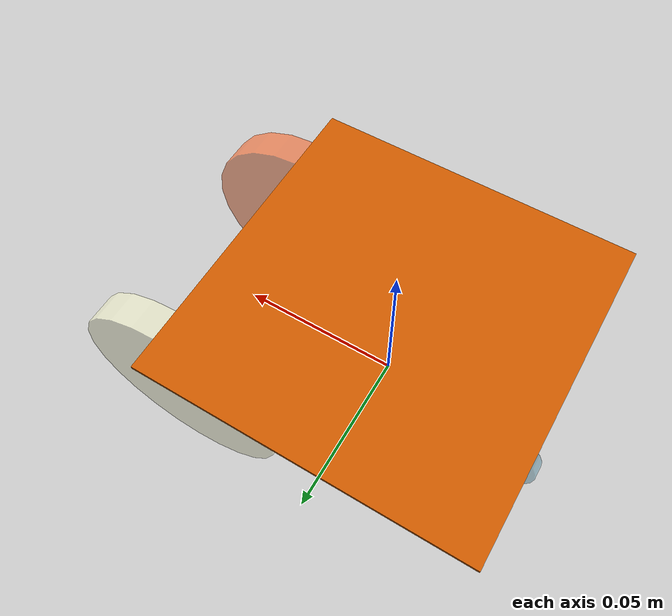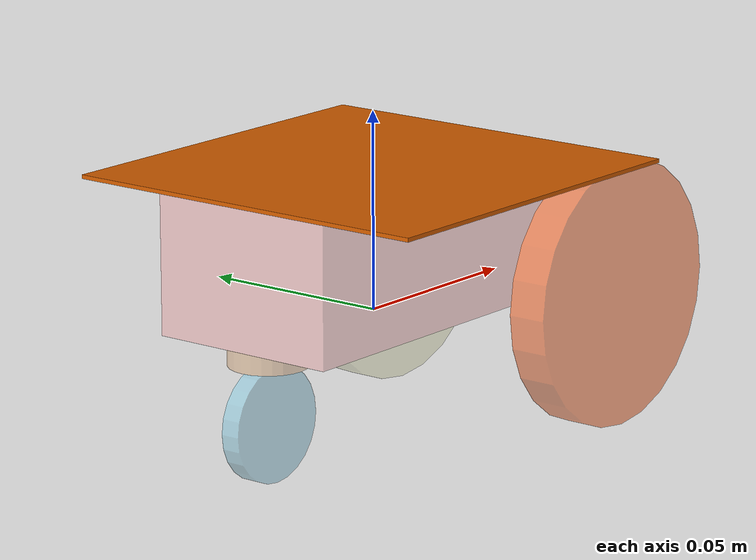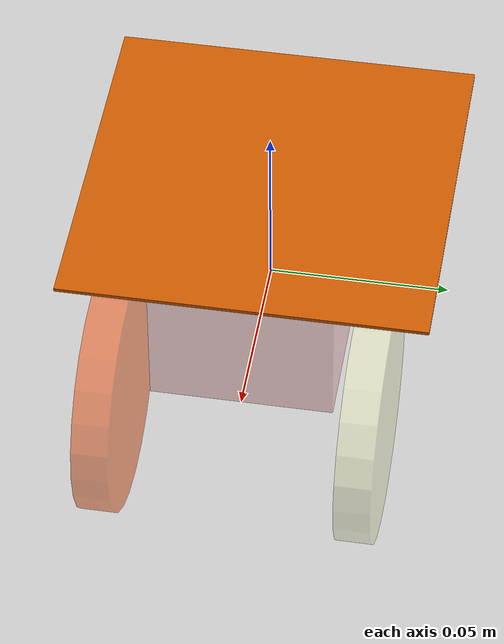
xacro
<?xml version="1.0"?>
<robot name="edumip" xmlns:xacro="http://ros.org/wiki/xacro">

<!-- Numerical Macros - units are meters and raidans -->
<xacro:property name="wheel_separation" value="0.070"/>
<xacro:property name="wheel_radius" value="0.034"/>
<xacro:property name="wheel_width" value="0.010"/>
<xacro:property name="body_height" value="0.1"/>
<xacro:property name="body_width" value="0.050"/>
<xacro:property name="body_length" value="0.035"/>
<xacro:property name="PI" value="3.1415926"/>
<xacro:property name="hokuyo_link" value="0.02"/>

<xacro:property name="front_base_height" value="0.005"/>
<xacro:property name="front_base_radius" value="0.01"/>

<material name="light_pink">
	<color rgba="1.0 0.7 0.7 0.5"/>
</material>

<material name="light_yellow">
	<color rgba="1.0 1.0 0.8 0.5"/>
</material>

<material name="orange">
	<color rgba="1.0 0.3 0.0 0.5"/>
</material>

<material name="burlywood">
	<color rgba="0.9 0.7 0.5 0.5"/>
</material>

<material name="skyblue">
    <color rgba="0.5 0.8 0.9 0.5"/>
</material>

<!-- edumip body -->
<link name="edumip_body">
	<collision>
		<origin xyz="0 0 ${0.5*body_length}" rpy="0 0 0"/>
		<geometry>
			<box size="${body_height} ${body_width} ${body_length}"/>
		</geometry>
	</collision>

	<visual>
		<origin xyz="0 0 ${0.5*body_length}" rpy="0 0 0"/>
		<geometry>
			<box size="${body_height} ${body_width} ${body_length}"/>
		</geometry>
		<material name="light_pink"/>
	</visual>

	<inertial>
		<origin xyz="0 0 ${0.5*body_length}" rpy="0 0 0"/>
		<mass value="0.180"/>
		<inertia ixx="6.0e-4" ixy="0" ixz="0" iyy="6.0e-4" iyz="0" izz="6.0e-4"/>
	</inertial>
</link>

<gazebo reference="edumip_body">
	<material>Gazebo/RedBright</material>
	<mu1>1.5</mu1>
	<mu2>1.5</mu2>
	<fdir1>1 0 0</fdir1>
	<kp>1000000.0</kp>
	<kd>100.0</kd>
	<maxVel>1.0</maxVel>
	<minDepth>0.01</minDepth>
</gazebo>

<!-- two wheels -->
<xacro:macro name="wheel" params="suffix reflect rviz_color gazebo_color">

	<link name="wheel${suffix}">
		<collision>
			<origin xyz="0 0 0" rpy="${PI/2} 0 0"/>
			<geometry>
				<cylinder radius="${wheel_radius}" length="${wheel_width}"/>
			</geometry>
		</collision>

		<visual>
			<origin xyz="0 0 0" rpy="${PI/2} 0 0"/>
			<geometry>
				<cylinder radius="${wheel_radius}" length="${wheel_width}"/>
			</geometry>
			<material name="${rviz_color}"/>
		</visual>

		<inertial>
			<origin xyz="0 0 0" rpy="0 0 0"/>
			<mass value="0.030"/>
			<inertia ixx="1.75e-5" ixy="0" ixz="0" iyy="1.75e-5" iyz="0" izz="1.75e-5"/>
		</inertial>
	</link>

	<joint name="joint${suffix}" type="continuous">
		<axis xyz="0 1 0" rpy="0 0 0"/>
		<parent link="edumip_body"/>
		<child link="wheel${suffix}"/>
		<origin xyz="${0.5*body_height} ${wheel_separation/2*reflect} 0" rpy="0 0 0"/>
	</joint>

	<gazebo reference="wheel${suffix}">
		<material>${gazebo_color}</material>
		<mu1>0.2</mu1>
		<mu2>0.2</mu2>
	</gazebo>

</xacro:macro>

<xacro:wheel suffix="L" reflect="1" rviz_color="light_yellow" gazebo_color="Gazebo/ZincYellow"/>
<xacro:wheel suffix="R" reflect="-1" rviz_color="orange" gazebo_color="Gazebo/Orange"/>

<!-- front wheel and its base to compose a ball joint -->
<!-- front wheel base -->

<link name="front_wheel_base">
    <collision>
        <origin xyz="0 0 0" rpy="0 0 0"/>
        <geometry>
            <cylinder radius="${front_base_radius}" length="${front_base_height}"/>
        </geometry>
    </collision>
    <visual>
        <origin xyz="0 0 0" rpy="0 0 0"/>
        <geometry>
            <cylinder radius="${front_base_radius}" length="${front_base_height}"/>
        </geometry>
        <material name="burlywood"/>
    </visual>
    <inertial>
        <origin xyz="0 0 0" rpy="0 0 0"/>
		<mass value="0.030"/>
        <inertia ixx="1.75e-5" ixy="0" ixz="0" iyy="1.75e-5" iyz="0" izz="1.75e-5"/>
    </inertial>
</link>

<joint name="front_wheel_base_joint" type="fixed">
    <axis xyz="0 0 1" rpy="0 0 0"/>
    <parent link="edumip_body"/>
    <child link="front_wheel_base"/>
    <origin xyz="-${0.5*body_height-0.01} 0 ${-front_base_height/2}" rpy="0 0 0"/>
	<limit lower="${-PI/3}" upper="${PI/3}" effort="1e2" velocity="1e0"/>
	<dynamcis damping="2e2" friction="1e2"/>
</joint>

<gazebo reference="front_wheel_base">
    <material>Gazebo/SkyBlue</material>
    <mu1>1.0</mu1>
    <mu2>1.0</mu2>
	<kp value="10000000.0" />
	<kd value="1.0" />
	<fdir1 value="1 0 0"/>
</gazebo>

<!-- front wheel -->
<link name="front_wheel">
    <collision>
        <origin xyz="0 0 0" rpy="${PI/2} 0 0"/>
        <geometry>
            <cylinder radius="${(wheel_radius-front_base_height)/2}" length="${wheel_width/2}"/>
        </geometry>
    </collision>
    <visual>
        <origin xyz="0 0 0" rpy="${PI/2} 0 0"/>
        <geometry>
            <cylinder radius="${(wheel_radius-front_base_height)/2}" length="${wheel_width/2}"/>
        </geometry>
        <material name="skyblue"/>
    </visual>
    <inertial>
        <origin xyz="0 0 0" rpy="0 0 0"/>
		<mass value="0.030"/>
        <inertia ixx="1.75e-5" ixy="0" ixz="0" iyy="1.75e-5" iyz="0" izz="1.75e-5"/>
    </inertial>
</link>

<joint name="front_wheel_joint" type="continuous">
    <axis xyz="0 1 0" rpy="0 0 0"/>
    <parent link="front_wheel_base"/>
    <child link="front_wheel"/>
    <origin xyz="0 0  ${-wheel_radius/2}" rpy="0 0 0"/>
</joint>

<gazebo reference="front_wheel">
    <material>Gazebo/Turquoise</material>
    <mu1>0.2</mu1>
    <mu2>0.2</mu2>
</gazebo>

<!-- edumip_balance plugin -->
<gazebo>
	<plugin name="edumip_horizontal_ros_gazebo_plugin" filename="libedumip_balance_ros_gazebo_plugin.so">
		<rosDebugLevel>3</rosDebugLevel>
		<updateRate>100</updateRate>
		<robotBaseFrame>edumip_body</robotBaseFrame>
		<frontBase>front_wheel_base_joint</frontBase>
		<frontJoint>front_wheel_joint</frontJoint>
		<leftJoint>jointL</leftJoint>
		<rightJoint>jointR</rightJoint>
		<wheelSeparation>${wheel_separation}</wheelSeparation>
		<wheelDiameter>${wheel_radius*2.0}</wheelDiameter>
		<commandTopic>/edumip/cmd</commandTopic>
		<stateTopic>/edumip/state</stateTopic>
	</plugin>
</gazebo>

<!-- add AR tag -->
<link name="artag_edumip">
	<visual>
<geometry>
		<mesh filename="package://final_project/meshes/artag.dae" scale="1.0 1.0 1.0"/>
</geometry>
	</visual>
	<collision>
<geometry>
		<mesh filename="package://final_project/meshes/artag.dae" scale="1.0 1.0 1.0"/>
</geometry>
	</collision>
	<inertial>
<mass value="1e-6" />
<inertia ixx="1e-6" ixy="0.0" ixz="0.0"
		iyy="1e-6" iyz="0.0"
		izz="1e-6" />
	</inertial>
</link>

<joint name="artag_edumip_joint" type="fixed">
	<origin xyz="0 0 ${body_length+0.001}" rpy="0 0 ${-PI/2}"/>	<!-- rotate to keep up with base frame-->
	<parent link="edumip_body"/>
	<child link="artag_edumip"/>
</joint>

</robot>
